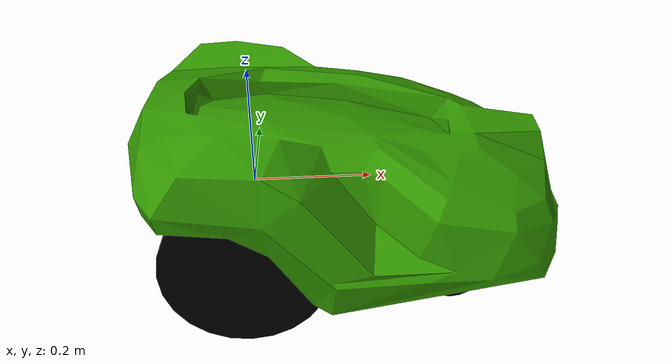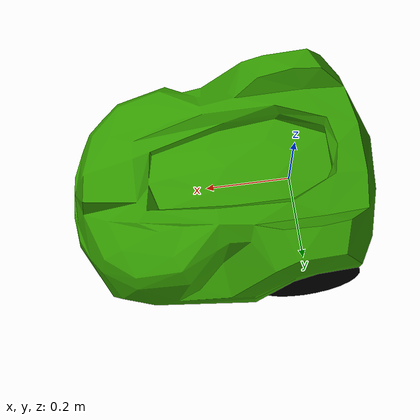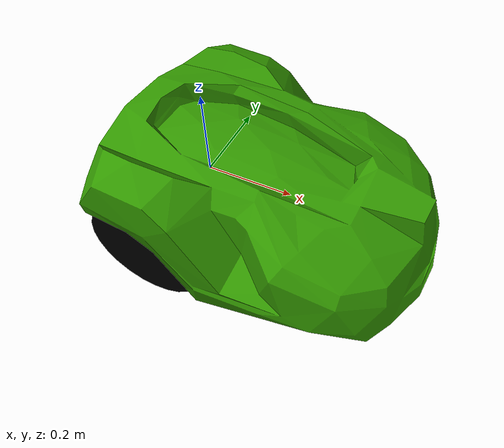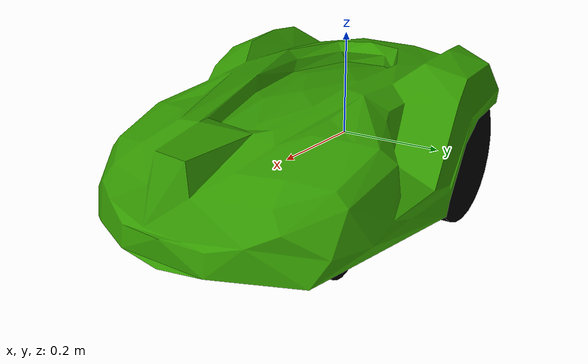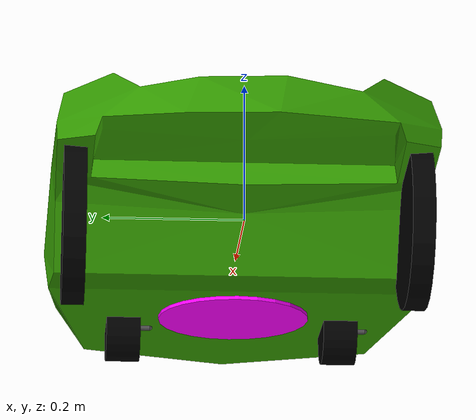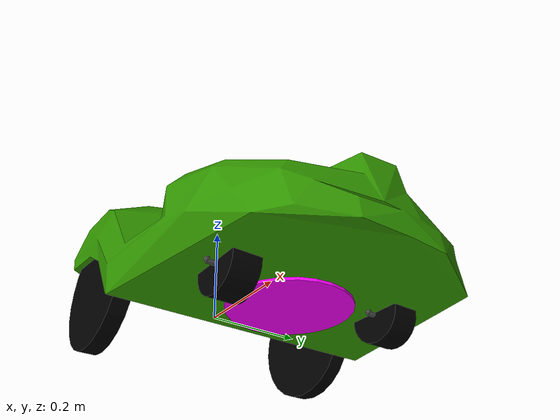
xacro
<?xml version="1.0"?>
<robot name="automower" xmlns:xacro="http://www.ros.org/wiki/xacro">

  <!-- Included URDF/XACRO Files -->
  <xacro:include filename="$(find am_description)/urdf/materials.urdf.xacro" />
  <xacro:include filename="$(find am_description)/urdf/wheel.urdf.xacro" />
  <xacro:include filename="$(find am_description)/urdf/swivel_wheel.urdf.xacro" />
  <xacro:include filename="$(find am_description)/urdf/sensorpos.urdf.xacro" />

  <!-- PROPERTY LIST -->
  <!--All units in m-kg-s-radians unit system -->
  <xacro:property name="M_PI" value="3.1415926535897931" />

  <!-- Main Body-base -->
  <xacro:property name="base_x_size" value="0.72" />
  <xacro:property name="base_y_size" value="0.55" />
  <xacro:property name="base_z_size" value="0.23" />
  <xacro:property name="base_mass" value="15" /> <!-- in kg-->
  <xacro:property name="base_z_origin_to_wheel_origin" value="-0.07" />

  <!--Inertial macros for the box and cylinder. Units are kg*m^2-->
  <xacro:macro name="box_inertia" params="m x y z">
    <inertia ixx="${m*(y*y+z*z)/12}" ixy="0" ixz="0"
             iyy="${m*(x*x+z*z)/12}" iyz="0"
             izz="${m*(x*x+z*z)/12}" />
  </xacro:macro>
  <!-- BASE-LINK -->
  <!--Actual body/chassis of the robot-->
  <link name="base_link">
    <inertial>
      <mass value="${base_mass}" />
      <origin xyz="0.165 0 -0.10" />
      <!--The 3x3 rotational inertia matrix. -->
      <box_inertia m="${5*base_mass}" x="${base_x_size}" y="${base_y_size}" z="${base_z_size}" />
    </inertial>
    <visual>
      <origin xyz="0 0 0" rpy="0 0 ${M_PI/2}" />
      <geometry>
        <mesh filename="package://am_description/urdf/am_chassis.stl" scale="0.001 0.001 0.001" />
        <box size="${base_x_size} ${base_y_size} ${base_z_size}" />
      </geometry>
      <material name="DarkGreen" />
    </visual>
    <collision>
      <origin xyz="0.17 0 0.08" rpy="0 0 0 " />
      <geometry>
        <box size="0.65 0.50 0.20" />
      </geometry>
    </collision>
  </link>
  <gazebo reference="base_link">
    <material>Gazebo/Green</material>
    <turnGravityOff>false</turnGravityOff>
  </gazebo>

  <!-- WHEELs -->
  <wheel fb="back" lr="right" parent="base_link" translateY="-0.24" translateX="0.0" translateZ="0.0"
         wheel_radius="0.1225" wheel_height="0.032" flip="1" />
  <wheel fb="back" lr="left" parent="base_link" translateY="0.24" translateX="0.0" translateZ="0.0"
         wheel_radius="0.1225" wheel_height="0.032" flip="1" />

  <swivel_wheel fb="front" lr="right" parent="base_link" translateY="-0.16" translateX="0.355" translateZ="0.03"
                wheel_radius="0.05" wheel_height="0.05" flip="0" />
  <swivel_wheel fb="front" lr="left" parent="base_link" translateY="0.16" translateX="0.355" translateZ="0.03"
                wheel_radius="0.05" wheel_height="0.05" flip="0" />

  <!-- LOOP SENSORs -->
  <sensorpos name="loop_front_center" parent="base_link" translateX="0.38" translateY="0.0" translateZ="-0.04" />
  <sensorpos name="loop_front_right" parent="base_link" translateX="0.38" translateY="-0.07" translateZ="-0.04" />
  <sensorpos name="loop_rear_left" parent="base_link" translateX="-0.07" translateY="0.14" translateZ="-0.04" />
  <sensorpos name="loop_rear_right" parent="base_link" translateX="-0.07" translateY="-0.14" translateZ="-0.04" />

  <!-- CONFINEMENT SENSORs -->
  <sensorpos name="col_front_chassis" parent="base_link" translateX="0.55" translateY="0.0" translateZ="0.00" />
  <sensorpos name="col_front_left" parent="base_link" translateX="0.43" translateY="0.24" translateZ="0.00" />
  <sensorpos name="col_front_right" parent="base_link" translateX="0.43" translateY="-0.24" translateZ="0.00" />
  <sensorpos name="col_rear_left" parent="base_link" translateX="-0.10" translateY="0.24" translateZ="0.0" />
  <sensorpos name="col_rear_right" parent="base_link" translateX="-0.10" translateY="-0.24" translateZ="0.0" />

  <!-- CUTTING DISC -->
  <link name="cutting_disc_center">
    <visual>
      <origin xyz="0 0 0" rpy="0 0 0" />
      <geometry>
        <cylinder length="0.01" radius="0.11" />
      </geometry>
      <material name="Purple" />
    </visual>
  </link>

  <gazebo reference="cutting_disc_center">
    <turnGravityOff>false</turnGravityOff>
  </gazebo>

  <joint name="cutting_disc_center_joint" type="fixed">
    <parent link="base_link" />
    <child link="cutting_disc_center" />
    <origin xyz="0.25 0.0 -0.07" rpy="0 0 0" />
  </joint>

  <!-- Antenna -->
  <link name="antenna_center">
    <visual>
      <origin xyz="0 0 0" rpy="0 0 0" />
      <geometry>
        <cylinder length="0.01" radius="0.05" />
      </geometry>
      <material name="Purple" />
    </visual>
  </link>

  <gazebo reference="antenna_center">
    <turnGravityOff>false</turnGravityOff>
  </gazebo>

  <joint name="antenna_center_joint" type="fixed">
    <parent link="base_link" />
    <child link="antenna_center" />
    <origin xyz="0.27 0.0 0.0" rpy="0 0 0" />
  </joint>

  <!-- GAZEBO STUFF -->
  <gazebo>
    <plugin name="automower_gazebo_controller" filename="libam_gazebo_controller_2wd.so">
      <alwaysOn>true</alwaysOn>
      <updateRate>100.0</updateRate>
      <leftJoint>back_right_wheel_joint</leftJoint>
      <rightJoint>back_left_wheel_joint</rightJoint>
      <wheelSeparation>0.4645</wheelSeparation>
      <wheelDiameter>0.245</wheelDiameter>
      <wheelTorque>100</wheelTorque>
      <commandTopic>cmd_vel</commandTopic>
      <odometryTopic>odom</odometryTopic>
      <odometryFrame>odom_gazebo</odometryFrame>
      <robotBaseFrame>base_link_gazebo</robotBaseFrame>
      <publishWheelTF>false</publishWheelTF>
      <publishWheelJointState>false</publishWheelJointState>
    </plugin>

    <plugin name="gazebo_ros_control" filename="libgazebo_ros_control.so" />

    <plugin name="imu_plugin" filename="libhector_gazebo_ros_imu.so">
      <alwaysOn>true</alwaysOn>
      <bodyName>base_link</bodyName>
      <topicName>imu</topicName>
      <serviceName>imu_service</serviceName>
      <updateRate>100.0</updateRate>
      <rpyOffsets>0 0 0</rpyOffsets> <!-- deprecated -->

      <gaussianNoise>0.0</gaussianNoise>  <!-- deprecated -->
      <accelDrift>0.0 0.0 0.0</accelDrift>
      <accelGaussianNoise>0.0 0.0 0.0</accelGaussianNoise>
      <rateDrift>0.0 0.0 0.0</rateDrift>
      <rateGaussianNoise>0.0 0.0 0.0</rateGaussianNoise>
      <headingDrift>0.0</headingDrift>
      <headingGaussianNoise>0.00</headingGaussianNoise>
    </plugin>

    <plugin name="am_gazebo_wheelencoder" filename="libam_gazebo_wheelencoder.so">
    </plugin>

    <plugin name="automower_gps_sim" filename="libhector_gazebo_ros_gps.so">
      <alwaysOn>true</alwaysOn>
      <updateRate>4.0</updateRate>
      <bodyName>base_link</bodyName>
      <topicName>fix</topicName>
      <velocityTopicName>fix_vel</velocityTopicName>
      <drift>5.0 5.0 5.0</drift>
      <gaussianNoise>0.1 0.1 0.1</gaussianNoise>
      <velocityDrift>0 0 0</velocityDrift>
      <velocityGaussianNoise>0.1 0.1 0.1</velocityGaussianNoise>
    </plugin>
  </gazebo>

  <gazebo reference="base_link">
    <sensor name="automower_sensor" type="contact">
      <always_on>true</always_on>
      <update_rate>50</update_rate>
      <contact>
        <collision>base_link_collision</collision>
      </contact>
      <plugin name="automower_sensors_plugin" filename="libam_gazebo_sensors.so">
        <always_on>true</always_on>
        <update_rate>20</update_rate>
        <bumperTopicName>sensor_status</bumperTopicName>
        <loopTopicName>loop</loopTopicName>
        <!-- 0x01 = FC, 0x02 = FR, 0x04 = RL, 0x08 = RR -->
        <loopOutsideSensors>15</loopOutsideSensors>
      </plugin>
    </sensor>
  </gazebo>

</robot>

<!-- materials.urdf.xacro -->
<robot>
  <material name="Black">
    <color rgba="0.0 0.0 0.0 1.0" />
  </material>

  <material name="Blue">
    <color rgba="0.0 0.0 0.8 1.0" />
  </material>

  <material name="Green">
    <color rgba="0.0 0.1 0.0 1.0" />
  </material>

  <material name="DarkGreen">
    <color rgba="0.2 0.6 0.0 1.0" />
  </material>

  <material name="Gray">
    <color rgba="0.7 0.7 0.7 1.0" />
  </material>

  <material name="DarkGray">
    <color rgba="0.3 0.3 0.3 1.0" />
  </material>

  <material name="Red">
    <color rgba="0.8 0.0 0.0 1.0" />
  </material>

  <material name="Purple">
    <color rgba="1.0 0.0 1.0 1.0" />
  </material>

  <material name="White">
    <color rgba="1.0 1.0 1.0 1.0" />
  </material>

  <material name="Yellow">
    <color rgba="0.8 0.8 0.0 1.0" />
  </material>
</robot>

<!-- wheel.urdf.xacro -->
<robot name="wheel" xmlns:xacro="http://www.ros.org/wiki/xacro">

  <!-- Wheels -->
  <xacro:property name="wheel_mass" value="0.3" /> <!-- in kg-->

  <xacro:macro name="cylinder_inertia" params="m r h">
    <inertia ixx="${m*(3*r*r+h*h)/12}" ixy="0" ixz="0"
             iyy="${m*(3*r*r+h*h)/12}" iyz="0"
             izz="${m*r*r/2}" />
  </xacro:macro>

  <xacro:macro name="wheel"
               params="fb lr parent translateX translateY translateZ wheel_radius wheel_height flip"> <!--fb : front, back ; lr: left, right -->
    <link name="${fb}_${lr}_wheel">
      <visual>
        <origin xyz="0 0 0" rpy="${flip*M_PI/2} 0 0" />
        <geometry>
          <cylinder length="${wheel_height}" radius="${wheel_radius}" />
        </geometry>
        <material name="Black" />
      </visual>
      <collision>
        <origin xyz="0 0 0" rpy="${flip*M_PI/2} 0 0" />
        <geometry>
          <cylinder length="${wheel_height}" radius="${wheel_radius}" />
        </geometry>
      </collision>
      <inertial>
        <mass value="${wheel_mass}" />
        <origin xyz="0 0 0" />
        <cylinder_inertia m="${wheel_mass}" r="${wheel_radius}" h="${wheel_height}" />
      </inertial>
    </link>

    <gazebo reference="${fb}_${lr}_wheel">
      <mu1 value="100.0" />
      <mu2 value="100.0" />
      <kp value="10000000.0" />
      <kd value="1.0" />
      <fdir1 value="1 0 0" />
      <material>Gazebo/Black</material>
      <turnGravityOff>false</turnGravityOff>
    </gazebo>

    <joint name="${fb}_${lr}_wheel_joint" type="continuous">
      <parent link="${parent}" />
      <child link="${fb}_${lr}_wheel" />
      <origin xyz="${translateX} ${translateY} ${translateZ}" rpy="0 0 0" />
      <axis xyz="0 1 0" rpy="0 0 0" />
      <limit effort="1000" velocity="100" />
      <joint_properties damping="0.0" friction="0.0" />
    </joint>

    <!-- Transmission is important to link the joints and the controller -->
    <transmission name="${fb}_${lr}_wheel_joint_trans">
      <type>transmission_interface/SimpleTransmission</type>
      <joint name="${fb}_${lr}_wheel_joint">
        <hardwareInterface>hardware_interface/EffortJointInterface</hardwareInterface>
      </joint>
      <actuator name="${fb}_${lr}_wheel_joint_motor">
        <hardwareInterface>hardware_interface/EffortJointInterface</hardwareInterface>
        <mechanicalReduction>1</mechanicalReduction>
      </actuator>
    </transmission>

  </xacro:macro>
</robot>

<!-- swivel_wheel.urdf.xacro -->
<robot name="swivel_wheel" xmlns:xacro="http://www.ros.org/wiki/xacro">

  <!-- Wheels -->
  <xacro:property name="wheel_mass" value="0.5" /> <!-- in kg-->

  <xacro:macro name="cylinder_inertia" params="m r h">
    <inertia ixx="${m*(3*r*r+h*h)/12}" ixy="0" ixz="0"
             iyy="${m*(3*r*r+h*h)/12}" iyz="0"
             izz="${m*r*r/2}" />
  </xacro:macro>

  <xacro:macro name="swivel_arm" params="lr index l offset">
    <link name="sw_arm_${lr}_${index}">

      <inertial>
        <mass value="0.01" />
        <origin xyz="0 0 0" />
        <cylinder_inertia m="0.01" r="0.004" h="${l}" />
      </inertial>

      <visual>
        <geometry>
          <cylinder radius="0.004" length="${l}" />
        </geometry>
        <material name="silver">
          <color rgba="0.3 0.3 0.3 1" />
        </material>
        <origin rpy="0 0 0" xyz="${offset}" />
      </visual>
    </link>
  </xacro:macro>

  <xacro:macro name="swivel_wheel"
               params="fb lr parent translateX translateY translateZ wheel_radius wheel_height flip"> <!--fb : front, back ; lr: left, right -->

    <!-- First link connected to parent-->
    <swivel_arm lr="${lr}" index="1" l="0.06" offset="0 0 -0.03" />

    <joint name="sw_arm_${lr}_connect_1" type="continuous">
      <origin xyz="${translateX} ${translateY} ${translateZ}" rpy="0 0 0" />
      <axis xyz="0 0 1" rpy="0 0 0" />
      <parent link="${parent}" />
      <child link="sw_arm_${lr}_1" />
      <limit effort="100" velocity="100" />
      <joint_properties damping="0.0" friction="0.0" />
    </joint>

    <!-- Second link connected to first-->
    <swivel_arm lr="${lr}" index="2" l="0.04" offset="0 0 0.02" />

    <joint name="sw_arm_${lr}_connect_2" type="fixed">
      <origin rpy="1.5707 0 0" xyz="0 0 -0.06" />
      <parent link="sw_arm_${lr}_1" />
      <child link="sw_arm_${lr}_2" />
    </joint>

    <!-- Third link connected to second-->
    <swivel_arm lr="${lr}" index="3" l="0.06" offset="0 0 -0.03" />

    <joint name="sw_arm_${lr}_connect_3" type="fixed">
      <origin rpy="-1.5707 0 -0.78" xyz="0 0 0.04" />
      <parent link="sw_arm_${lr}_2" />
      <child link="sw_arm_${lr}_3" />
    </joint>

    <!-- Fourth link connected to third-->
    <swivel_arm lr="${lr}" index="4" l="0.04" offset="0 0 -0.02" />

    <joint name="sw_arm_${lr}_connect_4" type="fixed">
      <origin rpy="1.5707 0 0" xyz="0 0 -0.060" />
      <parent link="sw_arm_${lr}_3" />
      <child link="sw_arm_${lr}_4" />
    </joint>

    <!-- Wheel connected to fourth-->
    <link name="${fb}_${lr}_swivel_wheel">
      <visual>
        <origin xyz="0 0 0" rpy="${flip*M_PI/2} 0 0" />
        <geometry>
          <cylinder length="${wheel_height}" radius="${wheel_radius}" />
        </geometry>
        <material name="Black" />
      </visual>
      <collision>
        <origin xyz="0 0 0" rpy="0 0 0" />
        <geometry>
          <cylinder length="${wheel_height}" radius="${wheel_radius}" />
        </geometry>
      </collision>
      <inertial>
        <mass value="${wheel_mass}" />
        <origin xyz="0 0 0" />
        <cylinder_inertia m="${wheel_mass}" r="${wheel_radius}" h="${wheel_height}" />
      </inertial>
    </link>

    <gazebo reference="${fb}_${lr}_swivel_wheel">
      <mu1 value="0.8" />
      <mu2 value="0.8" />
      <kp value="10000000.0" />
      <kd value="1.0" />
      <fdir1 value="1 0 0" />
      <material>Gazebo/Black</material>
      <turnGravityOff>false</turnGravityOff>
    </gazebo>

    <joint name="${fb}_${lr}_swivel_wheel_joint" type="continuous">
      <parent link="sw_arm_${lr}_4" />
      <child link="${fb}_${lr}_swivel_wheel" />
      <origin rpy="0 0 0" xyz="0 0 -0.04" />
      <axis xyz="0 0 1" rpy="0 0 0" />
      <limit effort="100" velocity="100" />
      <joint_properties damping="0.0" friction="0.0" />
    </joint>

    <!-- Transmission is important to link the joints and the controller -->

  </xacro:macro>
</robot>

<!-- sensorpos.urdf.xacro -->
<robot name="sensorpos" xmlns:xacro="http://www.ros.org/wiki/xacro">

  <!-- NOTE! Must have a mass/inertial so that Gazebo does not ignore these... -->
  <xacro:macro name="sensorpos" params="name parent translateX translateY translateZ ">
    <link name="${name}">
      <inertial>
        <origin xyz="0 0 1" rpy="0 0 0" />
        <mass value="0.01" />
        <inertia ixx="1.0" ixy="0.0" ixz="0.0"
                 iyy="1.0" iyz="0.0"
                 izz="1.0" />
      </inertial>
    </link>

    <gazebo reference="${name}">
      <turnGravityOff>true</turnGravityOff>
      <material>Gazebo/Orange</material>
    </gazebo>

    <joint name="${name}_joint" type="continuous">
      <parent link="${parent}" />
      <child link="${name}" />
      <origin xyz="${translateX} ${translateY} ${translateZ}" rpy="0 0 0" />
    </joint>

  </xacro:macro>
</robot>
